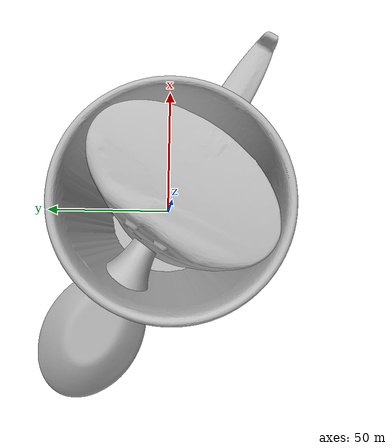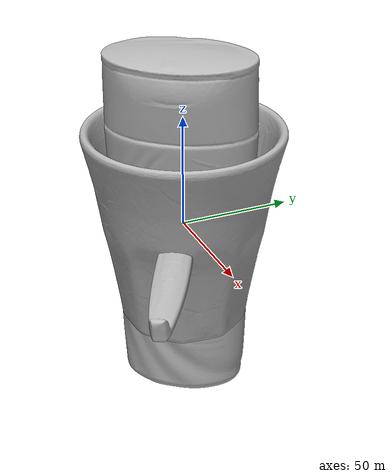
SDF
<sdf version="1.4">
 <world name="default">
  <light name="light1" type="point">
   <pose>0 0 1 0 0 0</pose>
   <diffuse>3 3 3 1</diffuse>
   <specular>3 3 3 1</specular>
  </light>
  <light name="light2" type="point">
   <pose>0 0.5 2 0 0 0</pose>
   <diffuse>1 1 1 1</diffuse>
   <specular>1 1 1 1</specular>
  </light>
  <light name="light3" type="point">
   <pose>0 0.5 2 0 0 0</pose>
   <diffuse>3 3 3 1</diffuse>
   <specular>3 3 3 1</specular>
  </light>
  <scene><ambient>0.7 0.7 0.7</ambient></scene>
  <model name="bottle1">
   <link name="link_bottle1">
    <collision name="default">
     <geometry>
      <mesh><uri>model://pure_zhen/collision_meshes/collision.obj</uri><scale>1.0 1.0 1.0</scale></mesh>
     </geometry>
     <surface>
      <friction><ode><mu>0.5</mu><mu2>0.5</mu2></ode></friction>
      <contact><ode><max_vel>0</max_vel><min_depth>0.0001</min_depth><kp>1e8</kp></ode></contact>
     </surface>
    </collision>
    <visual name="default">
     <geometry>
      <mesh><uri>model://pure_zhen/visual_meshes/visual.dae</uri><scale>1.0 1.0 1.0</scale></mesh>
     </geometry>
    </visual>
    <inertial>
     <mass>0.21128538250923157</mass>
     <pose>-8.582300506532192e-05 0.0002452346670906991 -0.0015797390369698405 -0.027642443229877835 0.005619248866174896 0.3057200614584077</pose>
     <inertia>
      <ixx>0.00063332287</ixx>
      <iyy>0.00063348823</iyy>
      <izz>6.6904315e-05</izz>
      <ixy>0</ixy>
      <ixz>0</ixz>
      <iyz>0</iyz>
     </inertia>
    </inertial>
   </link>
   <pose>-0.07437937706708908 0.07161127775907516 0.09194847196340561 0.019489824295155327 -0.016085366329363332 -0.5330383678656369</pose>
  </model>
  <model name="bottle2">
   <link name="link_bottle2">
    <collision name="default">
     <geometry>
      <mesh><uri>model://conditioner/collision_meshes/collision.obj</uri><scale>1.0 1.0 1.0</scale></mesh>
     </geometry>
     <surface>
      <friction><ode><mu>0.5</mu><mu2>0.5</mu2></ode></friction>
      <contact><ode><max_vel>0</max_vel><min_depth>0.0001</min_depth><kp>1e8</kp></ode></contact>
     </surface>
    </collision>
    <visual name="default">
     <geometry>
      <mesh><uri>model://conditioner/visual_meshes/visual.dae</uri><scale>1.0 1.0 1.0</scale></mesh>
     </geometry>
    </visual>
    <inertial>
     <mass>0.3611464500427246</mass>
     <pose>-0.00055994390277192 -0.0001729748910292983 0.004359682556241751 -0.005038374424784669 0.01530604350153207 0.015072341368129788</pose>
     <inertia>
      <ixx>0.00078562286</ixx>
      <iyy>0.0008415716</iyy>
      <izz>0.00012113213</izz>
      <ixy>0</ixy>
      <ixz>0</ixz>
      <iyz>0</iyz>
     </inertia>
    </inertial>
   </link>
   <pose>0.23968736827373505 0.045440636575222015 0.08122977614402771 0.036895458937674055 -0.015665160764972805 0.9310529468172828</pose>
  </model>
  <model name="silverware1">
   <link name="link_silverware1">
    <collision name="default">
     <geometry>
      <mesh><uri>model://doraemon_spoon/collision_meshes/collision.obj</uri><scale>1.0 1.0 1.0</scale></mesh>
     </geometry>
     <surface>
      <friction><ode><mu>0.5</mu><mu2>0.5</mu2></ode></friction>
      <contact><ode><max_vel>0</max_vel><min_depth>0.0001</min_depth><kp>1e8</kp></ode></contact>
     </surface>
    </collision>
    <visual name="default">
     <geometry>
      <mesh><uri>model://doraemon_spoon/visual_meshes/visual.dae</uri><scale>1.0 1.0 1.0</scale></mesh>
     </geometry>
    </visual>
    <inertial>
     <mass>0.02099660225212574</mass>
     <pose>-0.02216508239507675 -0.0006374581134878099 -0.003332545980811119 -0.009147162014623967 0.07380421234862718 -0.01412382746948542</pose>
     <inertia>
      <ixx>1.6446534e-06</ixx>
      <iyy>4.671061e-05</iyy>
      <izz>4.7504738e-05</izz>
      <ixy>0</ixy>
      <ixz>0</ixz>
      <iyz>0</iyz>
     </inertia>
    </inertial>
   </link>
   <pose>-0.11328732222318649 0.05057751014828682 0.004941889550536871 -3.137396349749125 0.11915079048203393 -0.5393171784931263</pose>
  </model>
  <model name="stationery1">
   <link name="link_stationery1">
    <collision name="default">
     <geometry>
      <mesh><uri>model://correction_fuid/collision_meshes/collision.obj</uri><scale>1.0 1.0 1.0</scale></mesh>
     </geometry>
     <surface>
      <friction><ode><mu>0.5</mu><mu2>0.5</mu2></ode></friction>
      <contact><ode><max_vel>0</max_vel><min_depth>0.0001</min_depth><kp>1e8</kp></ode></contact>
     </surface>
    </collision>
    <visual name="default">
     <geometry>
      <mesh><uri>model://correction_fuid/visual_meshes/visual.dae</uri><scale>1.0 1.0 1.0</scale></mesh>
     </geometry>
    </visual>
    <inertial>
     <mass>0.046645622700452805</mass>
     <pose>-0.00012557735317386687 -0.0009722909890115261 -0.001618212671019137 -0.010846607840907904 0.019488357502694276 -0.015992455488392</pose>
     <inertia>
      <ixx>4.5177083e-05</ixx>
      <iyy>2.7341744e-06</iyy>
      <izz>4.635291e-05</izz>
      <ixy>0</ixy>
      <ixz>0</ixz>
      <iyz>0</iyz>
     </inertia>
    </inertial>
   </link>
   <pose>-0.00019109956338070333 0.009462617337703705 0.009632829576730728 -0.0017271209847842342 -0.056168328033153865 2.631863993989982</pose>
  </model>
  <model name="bowl1">
   <link name="link_bowl1">
    <collision name="default">
     <geometry>
      <mesh><uri>model://doraemon_bowl/collision_meshes/collision.obj</uri><scale>1.0 1.0 1.0</scale></mesh>
     </geometry>
     <surface>
      <friction><ode><mu>0.5</mu><mu2>0.5</mu2></ode></friction>
      <contact><ode><max_vel>0</max_vel><min_depth>0.0001</min_depth><kp>1e8</kp></ode></contact>
     </surface>
    </collision>
    <visual name="default">
     <geometry>
      <mesh><uri>model://doraemon_bowl/visual_meshes/visual.dae</uri><scale>1.0 1.0 1.0</scale></mesh>
     </geometry>
    </visual>
    <inertial>
     <mass>0.11811670660972595</mass>
     <pose>-0.014629551209509373 0.0004857121384702623 -0.0020864885300397873 -0.00509396228069995 -0.10568398533611668 -0.02642645986873745</pose>
     <inertia>
      <ixx>0.00016378764</ixx>
      <iyy>0.00021554313</iyy>
      <izz>0.00031711452</izz>
      <ixy>0</ixy>
      <ixz>0</ixz>
      <iyz>0</iyz>
     </inertia>
    </inertial>
   </link>
   <pose>0.039831921458244324 0.21294960379600525 0.03025365248322487 -0.06347162800904523 0.4607760080204593 -2.6329718267736784</pose>
  </model>
  <model name="cup1">
   <link name="link_cup1">
    <collision name="default">
     <geometry>
      <mesh><uri>model://hello_kitty_cup/collision_meshes/collision.obj</uri><scale>1.0 1.0 1.0</scale></mesh>
     </geometry>
     <surface>
      <friction><ode><mu>0.5</mu><mu2>0.5</mu2></ode></friction>
      <contact><ode><max_vel>0</max_vel><min_depth>0.0001</min_depth><kp>1e8</kp></ode></contact>
     </surface>
    </collision>
    <visual name="default">
     <geometry>
      <mesh><uri>model://hello_kitty_cup/visual_meshes/visual.dae</uri><scale>1.0 1.0 1.0</scale></mesh>
     </geometry>
    </visual>
    <inertial>
     <mass>0.06522195786237717</mass>
     <pose>0.00027251147548668087 0.0002795039035845548 0.003044978016987443 0.05779148941225366 0.007964866585370347 -0.020452001862605422</pose>
     <inertia>
      <ixx>8.981858e-05</ixx>
      <iyy>9.081978e-05</iyy>
      <izz>7.573251e-05</izz>
      <ixy>0</ixy>
      <ixz>0</ixz>
      <iyz>0</iyz>
     </inertia>
    </inertial>
   </link>
   <pose>0.13267478346824646 0.009142628870904446 0.046216294169425964 -0.00587838879118075 0.010797430486840197 -0.18055025845573758</pose>
  </model>
  <model name="plate1">
   <link name="link_plate1">
    <collision name="default">
     <geometry>
      <mesh><uri>model://hello_kitty_plate/collision_meshes/collision.obj</uri><scale>1.0 1.0 1.0</scale></mesh>
     </geometry>
     <surface>
      <friction><ode><mu>0.5</mu><mu2>0.5</mu2></ode></friction>
      <contact><ode><max_vel>0</max_vel><min_depth>0.0001</min_depth><kp>1e8</kp></ode></contact>
     </surface>
    </collision>
    <visual name="default">
     <geometry>
      <mesh><uri>model://hello_kitty_plate/visual_meshes/visual.dae</uri><scale>1.0 1.0 1.0</scale></mesh>
     </geometry>
    </visual>
    <inertial>
     <mass>0.08260300010442734</mass>
     <pose>0.0073142931796610355 0.0002893725468311459 -0.0027947169728577137 -0.00010432002488368626 -0.007054440417891238 -0.014449022362072891</pose>
     <inertia>
      <ixx>0.0001592833</ixx>
      <iyy>0.00030061565</iyy>
      <izz>0.0004564546</izz>
      <ixy>0</ixy>
      <ixz>0</ixz>
      <iyz>0</iyz>
     </inertia>
    </inertial>
   </link>
   <pose>-0.012242398224771023 0.17503312230110168 0.034812599420547485 -0.46279060376685455 0.027548867487123766 2.2778896098271946</pose>
  </model>
  <model name="box4">
   <link name="link_box4">
    <collision name="default">
     <geometry>
      <mesh><uri>model://wooden_puzzle1/collision_meshes/collision.obj</uri><scale>1.0 1.0 1.0</scale></mesh>
     </geometry>
     <surface>
      <friction><ode><mu>0.5</mu><mu2>0.5</mu2></ode></friction>
      <contact><ode><max_vel>0</max_vel><min_depth>0.0001</min_depth><kp>1e8</kp></ode></contact>
     </surface>
    </collision>
    <visual name="default">
     <geometry>
      <mesh><uri>model://wooden_puzzle1/visual_meshes/visual.dae</uri><scale>1.0 1.0 1.0</scale></mesh>
     </geometry>
    </visual>
    <inertial>
     <mass>0.034562814980745316</mass>
     <pose>-0.0001735068071866408 7.97226166469045e-05 -9.191555000143126e-05 -0.07784459827727222 -0.2636103773563706 -0.5528705263726328</pose>
     <inertia>
      <ixx>6.5210584e-06</ixx>
      <iyy>6.395525e-06</iyy>
      <izz>6.471823e-06</izz>
      <ixy>0</ixy>
      <ixz>0</ixz>
      <iyz>0</iyz>
     </inertia>
    </inertial>
   </link>
   <pose>0.06468363106250763 -0.27246370911598206 0.01680198684334755 0.010517007615262619 -0.009458689546759685 -3.107406719097616</pose>
  </model>
  <physics type="ode">
   <max_contacts>50</max_contacts>
   <ode>
    <solver><type>quick</type><iters>75</iters></solver>
    <constraints>
     <contact_max_correcting_vel>0</contact_max_correcting_vel>
     <contact_surface_layer>0</contact_surface_layer>
    </constraints>
   </ode>
  </physics>
 </world>
</sdf>
